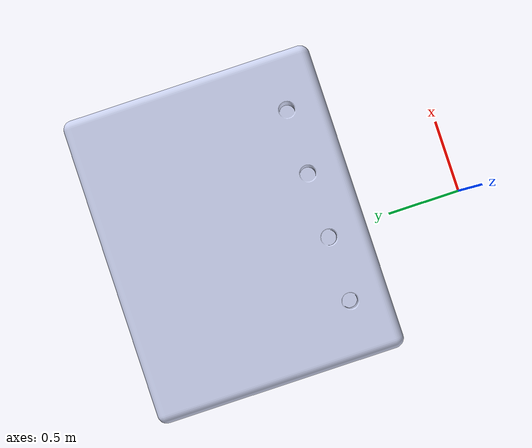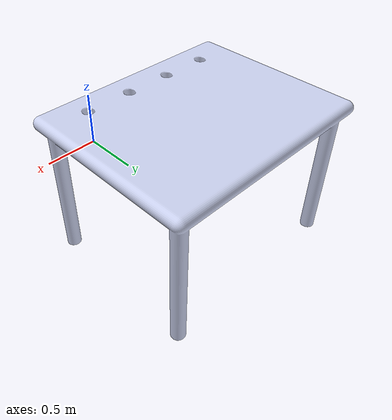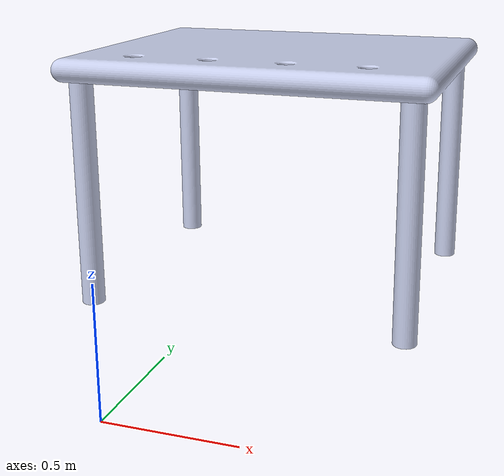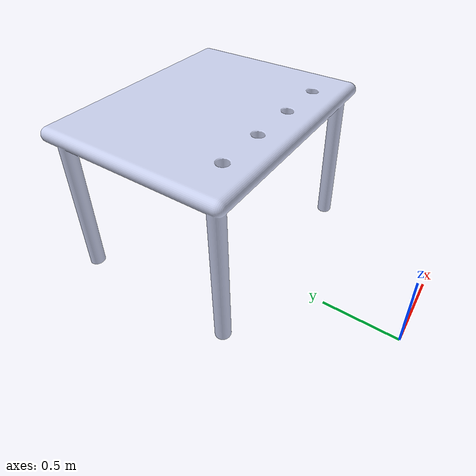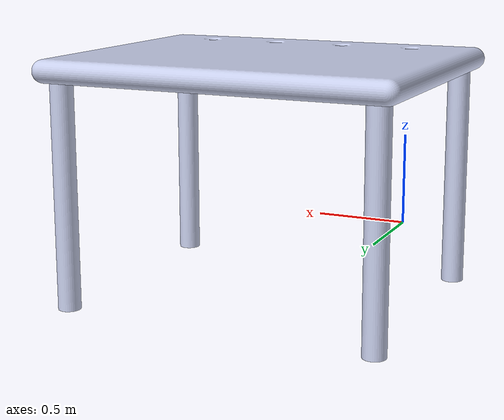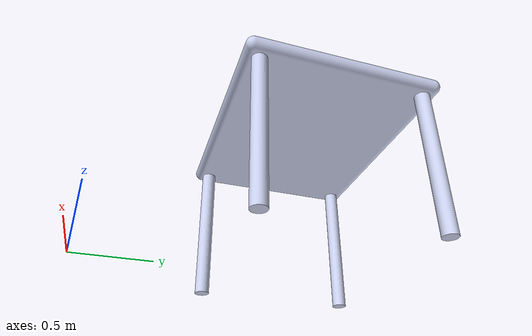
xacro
<?xml version="1.0"?>
<robot  name="table" xmlns:xacro="http://www.ros.org/wiki/xacro">
  <link
    name="world" />
  <link
    name="table">
    <inertial>
      <origin
        xyz="-0.080585 0.00067592 0.086754"
        rpy="0 0 0" />
      <mass
        value="30.385" />
      <inertia
        ixx="0.38941"
        ixy="0.0047083"
        ixz="0.060696"
        iyy="0.87424"
        iyz="-0.00029206"
        izz="1.0819" />
    </inertial>
    <visual>
      <origin
        xyz="0 0 0"
        rpy="0 0 0" />
      <geometry>
        <mesh
          filename="package://kr_50_r2500_gazebo/meshes/table.STL" />
      </geometry>
      <material
        name="">
        <color
          rgba="0.79216 0.81961 0.93333 1" />
      </material>
    </visual>
    <collision>
      <origin
        xyz="0 0 0"
        rpy="0 0 0" />
      <geometry>
        <mesh
          filename="package://kr_50_r2500_gazebo/meshes/table.STL" />
      </geometry>
    </collision>
  </link>
  <joint name="fixed" type="fixed">
      <origin
        xyz="0 1.5 0"
        rpy="0 0 0" />
      <parent link="world"/>
      <child link="table"/>
  </joint>
</robot>
